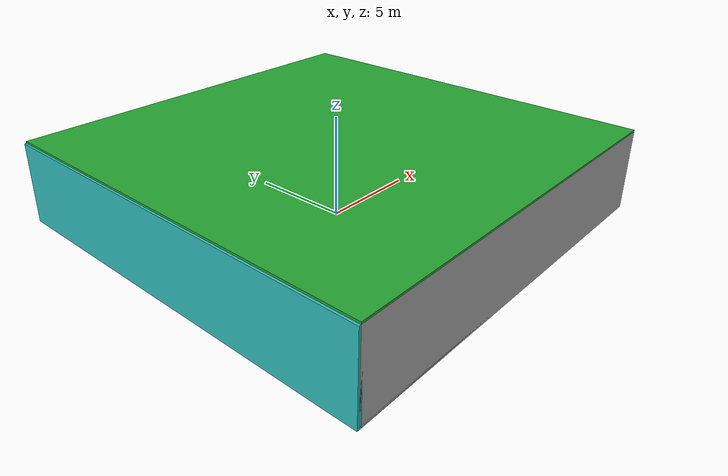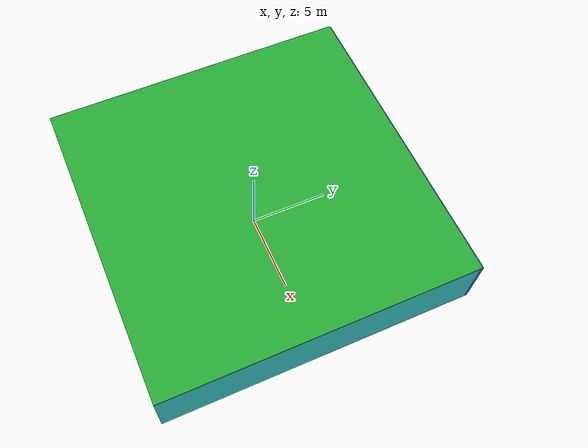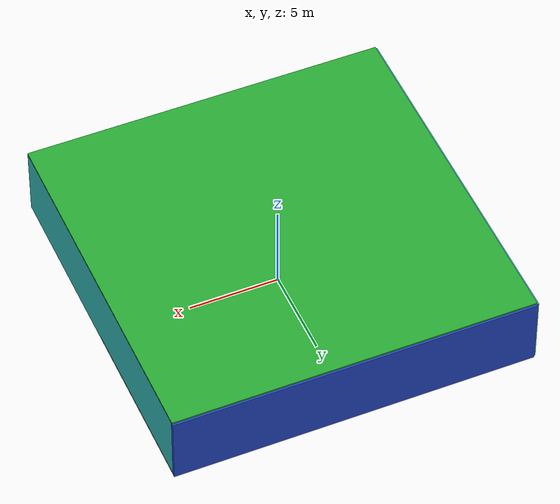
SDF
<sdf version="1.4">
 <world name="default">
  <physics type="ode">
   <max_step_size>0.001</max_step_size>
   <real_time_factor>1</real_time_factor>
   <real_time_update_rate>1000</real_time_update_rate>
   <gravity>0 0 -9.8</gravity>
  </physics>
  <scene><ambient>0.4 0.4 0.4 1</ambient><background>0.7 0.7 0.7 1</background><shadows>1</shadows></scene>
  <model name="Surrounding">
   <static>1</static>
   <link name="Ceiling">
    <collision name="Ceiling_Collision"><geometry><box><size>20 20 0.1</size></box></geometry></collision>
    <visual name="Ceiling_Visual">
     <geometry><box><size>20 20 0.1</size></box></geometry>
     <material>
      <script><uri>file://media/materials/scripts/gazebo.material</uri><name>Gazebo/GreenGlow</name></script>
     </material>
    </visual>
    <pose>0 0 4.05 0 0 0</pose>
   </link>
   <link name="Wall_South">
    <collision name="Wall_South_Collision">
     <geometry><box><size>20 0 4</size></box></geometry>
     <pose>0 0 2 0 -0 0</pose>
    </collision>
    <visual name="Wall_South_Visual">
     <pose>0 0 2 0 -0 0</pose>
     <geometry><box><size>20 0 4</size></box></geometry>
     <material>
      <script><uri>file://media/materials/scripts/gazebo.material</uri><name>Gazebo/CloudySky</name></script>
     </material>
    </visual>
    <velocity_decay><linear>0</linear><angular>0</angular></velocity_decay>
    <pose>0 -10 0 0 -0 0</pose>
   </link>
   <link name="Wall_East">
    <collision name="Wall_21_Collision">
     <geometry><box><size>20 0 4</size></box></geometry>
     <pose>0 0 2 0 -0 0</pose>
    </collision>
    <visual name="Wall_21_Visual">
     <pose>0 0 2 0 -0 0</pose>
     <geometry><box><size>20 0 4</size></box></geometry>
     <material>
      <script><uri>file://media/materials/scripts/gazebo.material</uri><name>Gazebo/Turquoise</name></script>
     </material>
    </visual>
    <velocity_decay><linear>0</linear><angular>0</angular></velocity_decay>
    <pose>10 0 0 0 -0 1.5708</pose>
   </link>
   <link name="Wall_North">
    <collision name="Wall_22_Collision">
     <geometry><box><size>20 0.2 4</size></box></geometry>
     <pose>0 0 2 0 -0 0</pose>
    </collision>
    <visual name="Wall_22_Visual">
     <pose>0 0 2 0 -0 0</pose>
     <geometry><box><size>20 0.2 4</size></box></geometry>
     <material>
      <script><uri>file://media/materials/scripts/gazebo.material</uri><name>Gazebo/BlueLaser</name></script>
     </material>
    </visual>
    <velocity_decay><linear>0</linear><angular>0</angular></velocity_decay>
    <pose>0 10 0 0 -0 0</pose>
   </link>
   <link name="Wall_West">
    <collision name="Wall_23_Collision">
     <geometry><box><size>20 0.2 4</size></box></geometry>
     <pose>0 0 2 0 -0 0</pose>
    </collision>
    <visual name="Wall_23_Visual">
     <pose>0 0 2 0 -0 0</pose>
     <geometry><box><size>20 0.2 4</size></box></geometry>
     <material>
      <script>
       <uri>file://media/materials/scripts/gazebo.material</uri>
       <name>Gazebo/TurquoiseGlowOutline</name>
      </script>
     </material>
    </visual>
    <velocity_decay><linear>0</linear><angular>0</angular></velocity_decay>
    <pose>-10 0 0 0 0 -1.5708</pose>
   </link>
   <link name="Ground_link">
    <collision name="collision">
     <pose>0 0 .05 0 -0 0</pose>
     <geometry><box><size>20 20 0.1</size></box></geometry>
    </collision>
    <visual name="visual">
     <pose>0 0 .05 0 -0 0</pose>
     <geometry><box><size>20 20 0.1</size></box></geometry>
     <material>
      <script><uri>file://media/materials/scripts/gazebo.material</uri><name>Gazebo/JointAnchor</name></script>
     </material>
    </visual>
   </link>
   <static>1</static>
  </model>
  <spherical_coordinates>
   <surface_model>EARTH_WGS84</surface_model>
   <latitude_deg>0</latitude_deg>
   <longitude_deg>0</longitude_deg>
   <elevation>0</elevation>
   <heading_deg>0</heading_deg>
  </spherical_coordinates>
  <light name="lightball_0" type="diffuse">
   <diffuse>0.8 0.8 0.8 1</diffuse>
   <specular>0.2 0.2 0.2 1</specular>
   <attenuation>
    <range>100</range>
    <constant>0.7</constant>
    <linear>0.01</linear>
    <quadratic>0.001</quadratic>
   </attenuation>
   <direction>-0.5 0.1 -0.9</direction>
   <pose>2.88204430617 -8.30390566471 1.82380608952 0 0 0</pose>
  </light>
  <light name="lightball_1" type="diffuse">
   <diffuse>0.8 0.8 0.8 1</diffuse>
   <specular>0.2 0.2 0.2 1</specular>
   <attenuation>
    <range>100</range>
    <constant>0.7</constant>
    <linear>0.01</linear>
    <quadratic>0.001</quadratic>
   </attenuation>
   <direction>-0.5 0.1 -0.9</direction>
   <pose>6.69629655789 2.02707276513 2.26264747107 0 0 0</pose>
  </light>
  <light name="lightball_2" type="diffuse">
   <diffuse>0.8 0.8 0.8 1</diffuse>
   <specular>0.2 0.2 0.2 1</specular>
   <attenuation>
    <range>100</range>
    <constant>0.7</constant>
    <linear>0.01</linear>
    <quadratic>0.001</quadratic>
   </attenuation>
   <direction>-0.5 0.1 -0.9</direction>
   <pose>7.81422417016 -6.99725063185 2.55574791738 0 0 0</pose>
  </light>
  <light name="lightball_3" type="diffuse">
   <diffuse>0.8 0.8 0.8 1</diffuse>
   <specular>0.2 0.2 0.2 1</specular>
   <attenuation>
    <range>100</range>
    <constant>0.7</constant>
    <linear>0.01</linear>
    <quadratic>0.001</quadratic>
   </attenuation>
   <direction>-0.5 0.1 -0.9</direction>
   <pose>-6.9798493501 8.58903615974 2.97464853896 0 0 0</pose>
  </light>
  <light name="lightball_4" type="diffuse">
   <diffuse>0.8 0.8 0.8 1</diffuse>
   <specular>0.2 0.2 0.2 1</specular>
   <attenuation>
    <range>100</range>
    <constant>0.7</constant>
    <linear>0.01</linear>
    <quadratic>0.001</quadratic>
   </attenuation>
   <direction>-0.5 0.1 -0.9</direction>
   <pose>2.43919782262 -2.2169038545 3.1789170119 0 0 0</pose>
  </light>
  <light name="lightball_5" type="diffuse">
   <diffuse>0.8 0.8 0.8 1</diffuse>
   <specular>0.2 0.2 0.2 1</specular>
   <attenuation>
    <range>100</range>
    <constant>0.7</constant>
    <linear>0.01</linear>
    <quadratic>0.001</quadratic>
   </attenuation>
   <direction>-0.5 0.1 -0.9</direction>
   <pose>9.23245916042 -4.38097414223 2.43920606996 0 0 0</pose>
  </light>
  <light name="lightball_6" type="diffuse">
   <diffuse>0.8 0.8 0.8 1</diffuse>
   <specular>0.2 0.2 0.2 1</specular>
   <attenuation>
    <range>100</range>
    <constant>0.7</constant>
    <linear>0.01</linear>
    <quadratic>0.001</quadratic>
   </attenuation>
   <direction>-0.5 0.1 -0.9</direction>
   <pose>-2.67051365662 -0.244995910817 3.30858512218 0 0 0</pose>
  </light>
  <include><uri>model://table</uri><pose>-1.77518022889 4.01457382642 0 0 0 2.3914963987</pose></include>
  <include><uri>model://cabinet</uri><pose>1.38775230891 4.01091127495 0 0 0 0.665025575638</pose></include>
  <include>
   <uri>model://robocup_3Dsim_goal</uri>
   <pose>5.23020987796 -1.21109700704 0 0 0 1.62628696045</pose>
  </include>
 </world>
</sdf>

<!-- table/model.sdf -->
<sdf version="1.5">
  <model name="table">
    <static>true</static>
    <link name="link">
      <collision name="surface">
        <pose>0 0 1.0 0 0 0</pose>
        <geometry>
          <box>
            <size>1.5 0.8 0.03</size>
          </box>
        </geometry>
        <surface>
          <friction>
            <ode>
              <mu>0.6</mu>
              <mu2>0.6</mu2>
            </ode>
          </friction>
        </surface>
      </collision>
      <visual name="visual1">
        <pose>0 0 1.0 0 0 0</pose>
        <geometry>
          <box>
            <size>1.5 0.8 0.03</size>
          </box>
        </geometry>
        <material>
          <script>
            <uri>model://media/materials/scripts/gazebo.material</uri>
            <name>Gazebo/Wood</name>
          </script>
        </material>
      </visual>
      <collision name="front_left_leg">
        <pose>0.68 0.38 0.5 0 0 0</pose>
        <geometry>
          <cylinder>
            <radius>0.02</radius>
            <length>1.0</length>
          </cylinder>
        </geometry>
      </collision>
      <visual name="front_left_leg">
        <pose>0.68 0.38 0.5 0 0 0</pose>
        <geometry>
          <cylinder>
            <radius>0.02</radius>
            <length>1.0</length>
          </cylinder>
        </geometry>
        <material>
          <script>
            <uri>model://media/materials/scripts/gazebo.material</uri>
            <name>Gazebo/Grey</name>
          </script>
        </material>
      </visual>
      <collision name="front_right_leg">
        <pose>0.68 -0.38 0.5 0 0 0</pose>
        <geometry>
          <cylinder>
            <radius>0.02</radius>
            <length>1.0</length>
          </cylinder>
        </geometry>
      </collision>
      <visual name="front_right_leg">
        <pose>0.68 -0.38 0.5 0 0 0</pose>
        <geometry>
          <cylinder>
            <radius>0.02</radius>
            <length>1.0</length>
          </cylinder>
        </geometry>
        <material>
          <script>
            <uri>model://media/materials/scripts/gazebo.material</uri>
            <name>Gazebo/Grey</name>
          </script>
        </material>
      </visual>
      <collision name="back_right_leg">
        <pose>-0.68 -0.38 0.5 0 0 0</pose>
        <geometry>
          <cylinder>
            <radius>0.02</radius>
            <length>1.0</length>
          </cylinder>
        </geometry>
      </collision>
      <visual name="back_right_leg">
        <pose>-0.68 -0.38 0.5 0 0 0</pose>
        <geometry>
          <cylinder>
            <radius>0.02</radius>
            <length>1.0</length>
          </cylinder>
        </geometry>
        <material>
          <script>
            <uri>model://media/materials/scripts/gazebo.material</uri>
            <name>Gazebo/Grey</name>
          </script>
        </material>
      </visual>
      <collision name="back_left_leg">
        <pose>-0.68 0.38 0.5 0 0 0</pose>
        <geometry>
          <cylinder>
            <radius>0.02</radius>
            <length>1.0</length>
          </cylinder>
        </geometry>
      </collision>
      <visual name="back_left_leg">
        <pose>-0.68 0.38 0.5 0 0 0</pose>
        <geometry>
          <cylinder>
            <radius>0.02</radius>
            <length>1.0</length>
          </cylinder>
        </geometry>
        <material>
          <script>
            <uri>model://media/materials/scripts/gazebo.material</uri>
            <name>Gazebo/Grey</name>
          </script>
        </material>
      </visual>
    </link>
  </model>
</sdf>

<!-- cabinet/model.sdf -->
<sdf version="1.5">
  <model name="cabinet">
    <static>true</static>
    <link name="cabinet_bottom_plate">
      <inertial>
        <pose>0 0 -1 0 0 0</pose>
        <inertia>
          <ixx>2.050000</ixx>
          <ixy>0</ixy>
          <ixz>0</ixz>
          <iyy>2.050000</iyy>
          <iyz>0</iyz>
          <izz>2.050000</izz>
        </inertia>
        <mass>25.000000</mass>
      </inertial>
      <collision name="cabinet_bottom_plate_geom">
        <pose>0 0 0.010000 0 0 0</pose>
        <geometry>
          <box>
            <size>0.450000 0.450000 0.020000</size>
          </box>
        </geometry>
      </collision>
      <visual name="cabinet_bottom_plate_geom_visual">
        <pose>0 0 0.010000 0 0 0</pose>
        <geometry>
          <box>
            <size>0.450000 0.450000 0.020000</size>
          </box>
        </geometry>
        <material>
          <script>
            <uri>model://media/materials/scripts/gazebo.material</uri>
            <name>Gazebo/Wood</name>
          </script>
        </material>
      </visual>
      <collision name="cabinet_bottom_plate_geom_cabinet_back_plate">
        <pose>0.235000 0 0.510000 0 0 0</pose>
        <geometry>
          <box>
            <size>0.020000 0.450000 1.020000</size>
          </box>
        </geometry>
      </collision>
      <visual name="cabinet_bottom_plate_geom_cabinet_back_plate_visual">
        <pose>0.235000 0 0.510000 0 0 0</pose>
        <geometry>
          <box>
            <size>0.020000 0.450000 1.020000</size>
          </box>
        </geometry>
        <material>
          <script>
            <uri>model://media/materials/scripts/gazebo.material</uri>
            <name>Gazebo/Wood</name>
          </script>
        </material>
      </visual>
      <collision name="cabinet_bottom_plate_geom_cabinet_left_plate">
        <pose>0 0.235000 0.510000 0 0 0</pose>
        <geometry>
          <box>
            <size>0.450000 0.020000 1.020000</size>
          </box>
        </geometry>
      </collision>
      <visual name="cabinet_bottom_plate_geom_cabinet_left_plate_visual">
        <pose>0 0.235000 0.510000 0 0 0</pose>
        <geometry>
          <box>
            <size>0.450000 0.020000 1.020000</size>
          </box>
        </geometry>
        <material>
          <script>
            <uri>model://media/materials/scripts/gazebo.material</uri>
            <name>Gazebo/Wood</name>
          </script>
        </material>
      </visual>
      <collision name="cabinet_bottom_plate_geom_cabinet_middle_plate">
        <pose>0 0 0.510000 0 0 0</pose>
        <geometry>
          <box>
            <size>0.450000 0.450000 0.020000</size>
          </box>
        </geometry>
      </collision>
      <visual name="cabinet_bottom_plate_geom_cabinet_middle_plate_visual">
        <pose>0 0 0.510000 0 0 0</pose>
        <geometry>
          <box>
            <size>0.450000 0.450000 0.020000</size>
          </box>
        </geometry>
        <material>
          <script>
            <uri>model://media/materials/scripts/gazebo.material</uri>
            <name>Gazebo/Wood</name>
          </script>
        </material>
      </visual>
      <collision name="cabinet_bottom_plate_geom_cabinet_right_plate">
        <pose>0 -0.235000 0.510000 0 0 0</pose>
        <geometry>
          <box>
            <size>0.450000 0.020000 1.020000</size>
          </box>
        </geometry>
      </collision>
      <visual name="cabinet_bottom_plate_geom_cabinet_right_plate_visual">
        <pose>0 -0.235000 0.510000 0 0 0</pose>
        <geometry>
          <box>
            <size>0.450000 0.020000 1.020000</size>
          </box>
        </geometry>
        <material>
          <script>
            <uri>model://media/materials/scripts/gazebo.material</uri>
            <name>Gazebo/Wood</name>
          </script>
        </material>
      </visual>
      <collision name="cabinet_bottom_plate_geom_cabinet_top_plate">
        <pose>0 0 1.010000 0 0 0</pose>
        <geometry>
          <box>
            <size>0.450000 0.450000 0.020000</size>
          </box>
        </geometry>
      </collision>
      <visual name="cabinet_bottom_plate_geom_cabinet_top_plate_visual">
        <pose>0 0 1.010000 0 0 0</pose>
        <geometry>
          <box>
            <size>0.450000 0.450000 0.020000</size>
          </box>
        </geometry>
        <material>
          <script>
            <uri>model://media/materials/scripts/gazebo.material</uri>
            <name>Gazebo/Wood</name>
          </script>
        </material>
      </visual>
    </link>
  </model>
</sdf>

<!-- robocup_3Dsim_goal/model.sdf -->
<sdf version="1.5">
  <model name="robocup_3d_goal">
    <static>true</static>
    <link name="left_post">
      <pose>0 1.05 0.45 0 0 0</pose>
      <collision name="collision">
        <geometry>
          <cylinder>
            <radius>0.05</radius>
            <length>0.9</length>
          </cylinder>
        </geometry>
      </collision>
      <visual name="visual">
        <geometry>
          <cylinder>
            <radius>0.05</radius>
            <length>0.9</length>
          </cylinder>
        </geometry>
        <material>
          <script>
            <uri>file://media/materials/scripts/gazebo.material</uri>
            <name>Gazebo/ZincYellow</name>
          </script>
        </material>
      </visual>
    </link>
    <link name="left_support_horiz_lower">
      <pose>0.30 1.05 0.01 0 0 0</pose>
      <collision name="collision">
        <geometry>
          <box>
            <size>0.50 0.02 0.02</size>
          </box>
        </geometry>
      </collision>
      <visual name="visual">
        <geometry>
          <box>
            <size>0.50 0.02 0.02</size>
          </box>
        </geometry>
        <material>
          <script>
            <uri>file://media/materials/scripts/gazebo.material</uri>
            <name>Gazebo/White</name>
          </script>
        </material>
      </visual>
    </link>
    <link name="left_support_horiz_upper">
      <pose>0.30 1.05 0.79 0 0 0</pose>
      <collision name="collision">
        <geometry>
          <box>
            <size>0.50 0.02 0.02</size>
          </box>
        </geometry>
      </collision>
      <visual name="visual">
        <geometry>
          <box>
            <size>0.50 0.02 0.02</size>
          </box>
        </geometry>
        <material>
          <script>
            <uri>file://media/materials/scripts/gazebo.material</uri>
            <name>Gazebo/White</name>
          </script>
        </material>
      </visual>
    </link>
    <link name="left_support_vertical">
      <pose>0.56 1.05 0.4 0 1.5708 0</pose>
      <collision name="collision">
        <geometry>
          <box>
            <size>0.80 0.02 0.02</size>
          </box>
        </geometry>
      </collision>
      <visual name="visual">
        <geometry>
          <box>
            <size>0.80 0.02 0.02</size>
          </box>
        </geometry>
        <material>
          <script>
            <uri>file://media/materials/scripts/gazebo.material</uri>
            <name>Gazebo/White</name>
          </script>
        </material>
      </visual>
    </link>
    <link name="right_support_horiz_lower">
      <pose>0.30 -1.05 0.01 0 0 0</pose>
      <collision name="collision">
        <geometry>
          <box>
            <size>0.50 0.02 0.02</size>
          </box>
        </geometry>
      </collision>
      <visual name="visual">
        <geometry>
          <box>
            <size>0.50 0.02 0.02</size>
          </box>
        </geometry>
        <material>
          <script>
            <uri>file://media/materials/scripts/gazebo.material</uri>
            <name>Gazebo/White</name>
          </script>
        </material>
      </visual>
    </link>
    <link name="right_support_horiz_upper">
      <pose>0.30 -1.05 0.79 0 0 0</pose>
      <collision name="collision">
        <geometry>
          <box>
            <size>0.50 0.02 0.02</size>
          </box>
        </geometry>
      </collision>
      <visual name="visual">
        <geometry>
          <box>
            <size>0.50 0.02 0.02</size>
          </box>
        </geometry>
        <material>
          <script>
            <uri>file://media/materials/scripts/gazebo.material</uri>
            <name>Gazebo/White</name>
          </script>
        </material>
      </visual>
    </link>
    <link name="right_support_vertical">
      <pose>0.56 -1.05 0.4 0 1.5708 0</pose>
      <collision name="collision">
        <geometry>
          <box>
            <size>0.80 0.02 0.02</size>
          </box>
        </geometry>
      </collision>
      <visual name="visual">
        <geometry>
          <box>
            <size>0.80 0.02 0.02</size>
          </box>
        </geometry>
        <material>
          <script>
            <uri>file://media/materials/scripts/gazebo.material</uri>
            <name>Gazebo/White</name>
          </script>
        </material>
      </visual>
    </link>
    <link name="center_support_horiz_lower">
      <pose>0.56 0 0.01 0 1.5708 0</pose>
      <collision name="collision">
        <geometry>
          <box>
            <size>0.02 2.08 0.02</size>
          </box>
        </geometry>
      </collision>
      <visual name="visual">
        <geometry>
          <box>
            <size>0.02 2.08 0.02</size>
          </box>
        </geometry>
        <material>
          <script>
            <uri>file://media/materials/scripts/gazebo.material</uri>
            <name>Gazebo/White</name>
          </script>
        </material>
      </visual>
    </link>
    <link name="center_support_horiz_upper">
      <pose>0.56 0 0.79 0 1.5708 0</pose>
      <collision name="collision">
        <geometry>
          <box>
            <size>0.02 2.08 0.02</size>
          </box>
        </geometry>
      </collision>
      <visual name="visual">
        <geometry>
          <box>
            <size>0.02 2.08 0.02</size>
          </box>
        </geometry>
        <material>
          <script>
            <uri>file://media/materials/scripts/gazebo.material</uri>
            <name>Gazebo/White</name>
          </script>
        </material>
      </visual>
    </link>
    <link name="right_post">
      <pose>0 -1.05 0.45 0 0 0</pose>
      <collision name="collision">
        <geometry>
          <cylinder>
            <radius>0.05</radius>
            <length>0.9</length>
          </cylinder>
        </geometry>
      </collision>
      <visual name="visual">
        <geometry>
          <cylinder>
            <radius>0.05</radius>
            <length>0.9</length>
          </cylinder>
        </geometry>
        <material>
          <script>
            <uri>file://media/materials/scripts/gazebo.material</uri>
            <name>Gazebo/ZincYellow</name>
          </script>
        </material>
      </visual>
    </link>
    <link name="crossbar">
      <pose>0 0 0.85 1.57 1.57 0</pose>
      <collision name="collision">
        <geometry>
          <cylinder>
            <radius>0.05</radius>
            <length>2.0</length>
          </cylinder>
        </geometry>
      </collision>
      <visual name="visual">
        <geometry>
          <cylinder>
            <radius>0.05</radius>
            <length>2.0</length>
          </cylinder>
        </geometry>
        <material>
          <script>
            <uri>file://media/materials/scripts/gazebo.material</uri>
            <name>Gazebo/ZincYellow</name>
          </script>
        </material>
      </visual>
    </link>
    <link name="center_net">
      <pose>0.56 0 0.40 0 0 0</pose>
      <collision name="collision">
        <geometry>
          <box>
            <size>0.01 2.1 0.80</size>
          </box>
        </geometry>
      </collision>
      <visual name="visual">
        <geometry>
          <box>
            <size>0.01 2.1 0.80</size>
          </box>
        </geometry>
        <material>
          <script>
            <uri>model://../model_source/models/robocup09_spl_field/materials/scripts/</uri>
            <uri>model://../model_source/models/robocup09_spl_field/materials/textures/</uri>
            <name>RoboCup/Net</name>
          </script>
        </material>
      </visual>
    </link>
    <link name="left_net">
      <pose>0.30 1.05 0.40 0 0 0</pose>
      <collision name="collision">
        <geometry>
          <box>
            <size>0.50 0.01 0.76</size>
          </box>
        </geometry>
      </collision>
      <visual name="visual">
        <geometry>
          <box>
            <size>0.50 0.01 0.76</size>
          </box>
        </geometry>
        <material>
          <script>
            <uri>model://../model_source/models/robocup09_spl_field/materials/scripts/</uri>
            <uri>model://../model_source/models/robocup09_spl_field/materials/textures/</uri>
            <name>RoboCup/Net</name>
          </script>
        </material>
      </visual>
    </link>
    <link name="right_net">
      <pose>0.30 -1.05 0.40 0 0 0</pose>
      <collision name="collision">
        <geometry>
          <box>
            <size>0.50 0.01 0.76</size>
          </box>
        </geometry>
      </collision>
      <visual name="visual">
        <geometry>
          <box>
            <size>0.50 0.01 0.76</size>
          </box>
        </geometry>
        <material>
          <script>
            <uri>model://../model_source/models/robocup09_spl_field/materials/scripts/</uri>
            <uri>model://../model_source/models/robocup09_spl_field/materials/textures/</uri>
            <name>RoboCup/Net</name>
          </script>
        </material>
      </visual>
    </link>
  </model>
</sdf>
